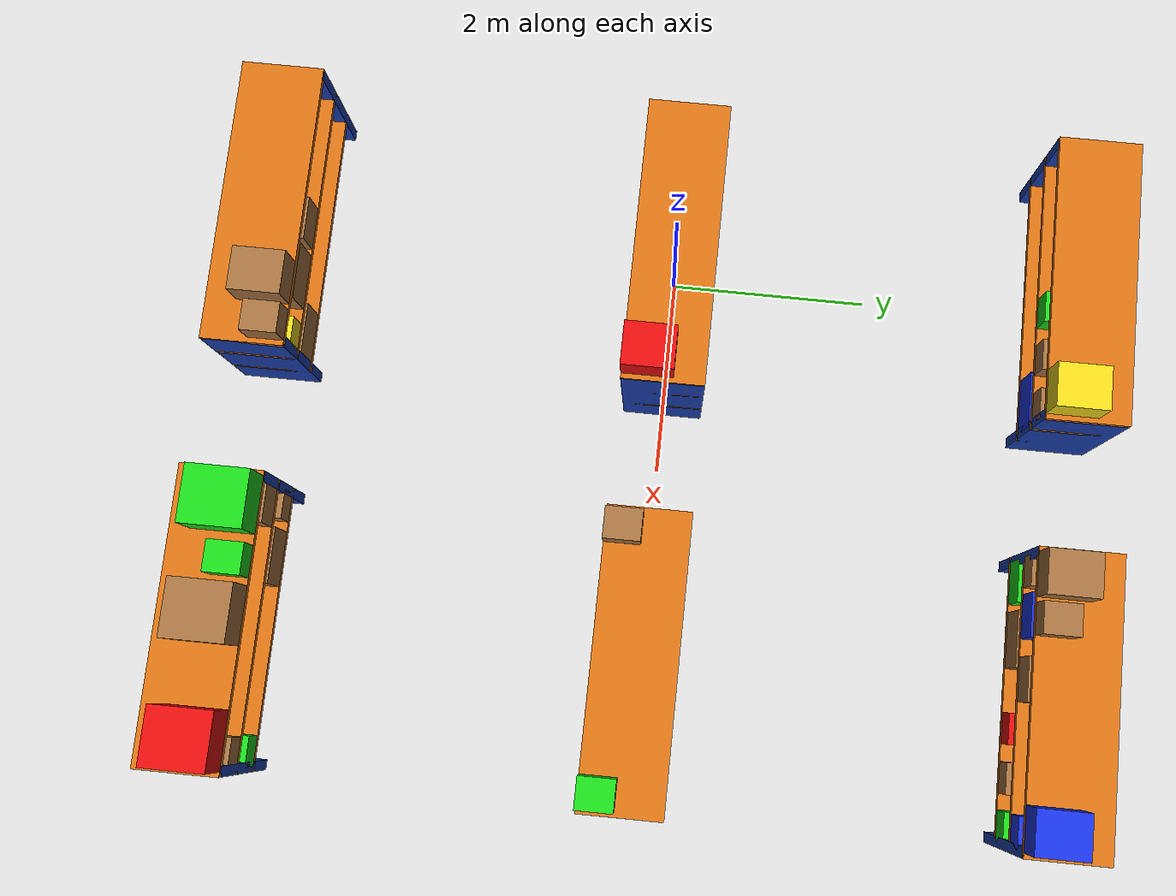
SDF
<sdf version="1.8">
 <world name="default">
  <model name="raf_A2">
   <static>true</static>
   <pose>0 4 0 0 0 0</pose>
   <link name="link">
    <collision name="c">
     <pose>0 0 0.75 0 0 0</pose>
     <geometry><box><size>2.8 0.8 1.5</size></box></geometry>
    </collision>
    <visual name="lidar_dolgu">
     <pose>0 0 0.75 0 0 0</pose>
     <geometry><box><size>2.8 0.8 1.5</size></box></geometry>
     <transparency>1</transparency>
     <cast_shadows>false</cast_shadows>
    </visual>
    <visual name="dikey_sol">
     <pose>-1.35 0 0.75 0 0 0</pose>
     <geometry><box><size>0.1 0.8 1.5</size></box></geometry>
     <material><ambient>0.05 0.15 0.5 1</ambient><diffuse>0.1 0.25 0.7 1</diffuse></material>
    </visual>
    <visual name="dikey_sag">
     <pose>1.35 0 0.75 0 0 0</pose>
     <geometry><box><size>0.1 0.8 1.5</size></box></geometry>
     <material><ambient>0.05 0.15 0.5 1</ambient><diffuse>0.1 0.25 0.7 1</diffuse></material>
    </visual>
    <visual name="kat_1">
     <pose>0 0 0.45 0 0 0</pose>
     <geometry><box><size>2.8 0.8 0.06</size></box></geometry>
     <material><ambient>0.6 0.3 0.05 1</ambient><diffuse>0.85 0.45 0.08 1</diffuse></material>
    </visual>
    <visual name="kat_2">
     <pose>0 0 1.0 0 0 0</pose>
     <geometry><box><size>2.8 0.8 0.06</size></box></geometry>
     <material><ambient>0.6 0.3 0.05 1</ambient><diffuse>0.85 0.45 0.08 1</diffuse></material>
    </visual>
    <visual name="kat_3">
     <pose>0 0 1.5 0 0 0</pose>
     <geometry><box><size>2.8 0.8 0.06</size></box></geometry>
     <material><ambient>0.6 0.3 0.05 1</ambient><diffuse>0.85 0.45 0.08 1</diffuse></material>
    </visual>
   </link>
  </model>
  <model name="raf_A3">
   <static>true</static>
   <pose>4 4 0 0 0 0</pose>
   <link name="link">
    <collision name="c">
     <pose>0 0 0.75 0 0 0</pose>
     <geometry><box><size>2.8 0.8 1.5</size></box></geometry>
    </collision>
    <visual name="lidar_dolgu">
     <pose>0 0 0.75 0 0 0</pose>
     <geometry><box><size>2.8 0.8 1.5</size></box></geometry>
     <transparency>1</transparency>
     <cast_shadows>false</cast_shadows>
    </visual>
    <visual name="dikey_sol">
     <pose>-1.35 0 0.75 0 0 0</pose>
     <geometry><box><size>0.1 0.8 1.5</size></box></geometry>
     <material><ambient>0.05 0.15 0.5 1</ambient><diffuse>0.1 0.25 0.7 1</diffuse></material>
    </visual>
    <visual name="dikey_sag">
     <pose>1.35 0 0.75 0 0 0</pose>
     <geometry><box><size>0.1 0.8 1.5</size></box></geometry>
     <material><ambient>0.05 0.15 0.5 1</ambient><diffuse>0.1 0.25 0.7 1</diffuse></material>
    </visual>
    <visual name="kat_1">
     <pose>0 0 0.45 0 0 0</pose>
     <geometry><box><size>2.8 0.8 0.06</size></box></geometry>
     <material><ambient>0.6 0.3 0.05 1</ambient><diffuse>0.85 0.45 0.08 1</diffuse></material>
    </visual>
    <visual name="kat_2">
     <pose>0 0 1.0 0 0 0</pose>
     <geometry><box><size>2.8 0.8 0.06</size></box></geometry>
     <material><ambient>0.6 0.3 0.05 1</ambient><diffuse>0.85 0.45 0.08 1</diffuse></material>
    </visual>
    <visual name="kat_3">
     <pose>0 0 1.5 0 0 0</pose>
     <geometry><box><size>2.8 0.8 0.06</size></box></geometry>
     <material><ambient>0.6 0.3 0.05 1</ambient><diffuse>0.85 0.45 0.08 1</diffuse></material>
    </visual>
   </link>
  </model>
  <model name="raf_B2">
   <static>true</static>
   <link name="link">
    <collision name="c">
     <pose>0 0 0.75 0 0 0</pose>
     <geometry><box><size>2.8 0.8 1.5</size></box></geometry>
    </collision>
    <visual name="lidar_dolgu">
     <pose>0 0 0.75 0 0 0</pose>
     <geometry><box><size>2.8 0.8 1.5</size></box></geometry>
     <transparency>1</transparency>
     <cast_shadows>false</cast_shadows>
    </visual>
    <visual name="dikey_sol">
     <pose>-1.35 0 0.75 0 0 0</pose>
     <geometry><box><size>0.1 0.8 1.5</size></box></geometry>
     <material><ambient>0.05 0.15 0.5 1</ambient><diffuse>0.1 0.25 0.7 1</diffuse></material>
    </visual>
    <visual name="dikey_sag">
     <pose>1.35 0 0.75 0 0 0</pose>
     <geometry><box><size>0.1 0.8 1.5</size></box></geometry>
     <material><ambient>0.05 0.15 0.5 1</ambient><diffuse>0.1 0.25 0.7 1</diffuse></material>
    </visual>
    <visual name="kat_1">
     <pose>0 0 0.45 0 0 0</pose>
     <geometry><box><size>2.8 0.8 0.06</size></box></geometry>
     <material><ambient>0.6 0.3 0.05 1</ambient><diffuse>0.85 0.45 0.08 1</diffuse></material>
    </visual>
    <visual name="kat_2">
     <pose>0 0 1.0 0 0 0</pose>
     <geometry><box><size>2.8 0.8 0.06</size></box></geometry>
     <material><ambient>0.6 0.3 0.05 1</ambient><diffuse>0.85 0.45 0.08 1</diffuse></material>
    </visual>
    <visual name="kat_3">
     <pose>0 0 1.5 0 0 0</pose>
     <geometry><box><size>2.8 0.8 0.06</size></box></geometry>
     <material><ambient>0.6 0.3 0.05 1</ambient><diffuse>0.85 0.45 0.08 1</diffuse></material>
    </visual>
   </link>
  </model>
  <model name="raf_B3">
   <static>true</static>
   <pose>4 0 0 0 0 0</pose>
   <link name="link">
    <collision name="c">
     <pose>0 0 0.75 0 0 0</pose>
     <geometry><box><size>2.8 0.8 1.5</size></box></geometry>
    </collision>
    <visual name="lidar_dolgu">
     <pose>0 0 0.75 0 0 0</pose>
     <geometry><box><size>2.8 0.8 1.5</size></box></geometry>
     <transparency>1</transparency>
     <cast_shadows>false</cast_shadows>
    </visual>
    <visual name="dikey_sol">
     <pose>-1.35 0 0.75 0 0 0</pose>
     <geometry><box><size>0.1 0.8 1.5</size></box></geometry>
     <material><ambient>0.05 0.15 0.5 1</ambient><diffuse>0.1 0.25 0.7 1</diffuse></material>
    </visual>
    <visual name="dikey_sag">
     <pose>1.35 0 0.75 0 0 0</pose>
     <geometry><box><size>0.1 0.8 1.5</size></box></geometry>
     <material><ambient>0.05 0.15 0.5 1</ambient><diffuse>0.1 0.25 0.7 1</diffuse></material>
    </visual>
    <visual name="kat_1">
     <pose>0 0 0.45 0 0 0</pose>
     <geometry><box><size>2.8 0.8 0.06</size></box></geometry>
     <material><ambient>0.6 0.3 0.05 1</ambient><diffuse>0.85 0.45 0.08 1</diffuse></material>
    </visual>
    <visual name="kat_2">
     <pose>0 0 1.0 0 0 0</pose>
     <geometry><box><size>2.8 0.8 0.06</size></box></geometry>
     <material><ambient>0.6 0.3 0.05 1</ambient><diffuse>0.85 0.45 0.08 1</diffuse></material>
    </visual>
    <visual name="kat_3">
     <pose>0 0 1.5 0 0 0</pose>
     <geometry><box><size>2.8 0.8 0.06</size></box></geometry>
     <material><ambient>0.6 0.3 0.05 1</ambient><diffuse>0.85 0.45 0.08 1</diffuse></material>
    </visual>
   </link>
  </model>
  <model name="raf_C2">
   <static>true</static>
   <pose>0 -4 0 0 0 0</pose>
   <link name="link">
    <collision name="c">
     <pose>0 0 0.75 0 0 0</pose>
     <geometry><box><size>2.8 0.8 1.5</size></box></geometry>
    </collision>
    <visual name="lidar_dolgu">
     <pose>0 0 0.75 0 0 0</pose>
     <geometry><box><size>2.8 0.8 1.5</size></box></geometry>
     <transparency>1</transparency>
     <cast_shadows>false</cast_shadows>
    </visual>
    <visual name="dikey_sol">
     <pose>-1.35 0 0.75 0 0 0</pose>
     <geometry><box><size>0.1 0.8 1.5</size></box></geometry>
     <material><ambient>0.05 0.15 0.5 1</ambient><diffuse>0.1 0.25 0.7 1</diffuse></material>
    </visual>
    <visual name="dikey_sag">
     <pose>1.35 0 0.75 0 0 0</pose>
     <geometry><box><size>0.1 0.8 1.5</size></box></geometry>
     <material><ambient>0.05 0.15 0.5 1</ambient><diffuse>0.1 0.25 0.7 1</diffuse></material>
    </visual>
    <visual name="kat_1">
     <pose>0 0 0.45 0 0 0</pose>
     <geometry><box><size>2.8 0.8 0.06</size></box></geometry>
     <material><ambient>0.6 0.3 0.05 1</ambient><diffuse>0.85 0.45 0.08 1</diffuse></material>
    </visual>
    <visual name="kat_2">
     <pose>0 0 1.0 0 0 0</pose>
     <geometry><box><size>2.8 0.8 0.06</size></box></geometry>
     <material><ambient>0.6 0.3 0.05 1</ambient><diffuse>0.85 0.45 0.08 1</diffuse></material>
    </visual>
    <visual name="kat_3">
     <pose>0 0 1.5 0 0 0</pose>
     <geometry><box><size>2.8 0.8 0.06</size></box></geometry>
     <material><ambient>0.6 0.3 0.05 1</ambient><diffuse>0.85 0.45 0.08 1</diffuse></material>
    </visual>
   </link>
  </model>
  <model name="raf_C3">
   <static>true</static>
   <pose>4 -4 0 0 0 0</pose>
   <link name="link">
    <collision name="c">
     <pose>0 0 0.75 0 0 0</pose>
     <geometry><box><size>2.8 0.8 1.5</size></box></geometry>
    </collision>
    <visual name="lidar_dolgu">
     <pose>0 0 0.75 0 0 0</pose>
     <geometry><box><size>2.8 0.8 1.5</size></box></geometry>
     <transparency>1</transparency>
     <cast_shadows>false</cast_shadows>
    </visual>
    <visual name="dikey_sol">
     <pose>-1.35 0 0.75 0 0 0</pose>
     <geometry><box><size>0.1 0.8 1.5</size></box></geometry>
     <material><ambient>0.05 0.15 0.5 1</ambient><diffuse>0.1 0.25 0.7 1</diffuse></material>
    </visual>
    <visual name="dikey_sag">
     <pose>1.35 0 0.75 0 0 0</pose>
     <geometry><box><size>0.1 0.8 1.5</size></box></geometry>
     <material><ambient>0.05 0.15 0.5 1</ambient><diffuse>0.1 0.25 0.7 1</diffuse></material>
    </visual>
    <visual name="kat_1">
     <pose>0 0 0.45 0 0 0</pose>
     <geometry><box><size>2.8 0.8 0.06</size></box></geometry>
     <material><ambient>0.6 0.3 0.05 1</ambient><diffuse>0.85 0.45 0.08 1</diffuse></material>
    </visual>
    <visual name="kat_2">
     <pose>0 0 1.0 0 0 0</pose>
     <geometry><box><size>2.8 0.8 0.06</size></box></geometry>
     <material><ambient>0.6 0.3 0.05 1</ambient><diffuse>0.85 0.45 0.08 1</diffuse></material>
    </visual>
    <visual name="kat_3">
     <pose>0 0 1.5 0 0 0</pose>
     <geometry><box><size>2.8 0.8 0.06</size></box></geometry>
     <material><ambient>0.6 0.3 0.05 1</ambient><diffuse>0.85 0.45 0.08 1</diffuse></material>
    </visual>
   </link>
  </model>
  <model name="kutu_A2_k1_p4">
   <static>true</static>
   <pose>1.075 3.900 0.690 0 0 0</pose>
   <link name="link">
    <collision name="c"><geometry><box><size>0.55 0.60 0.42</size></box></geometry></collision>
    <visual name="v">
     <geometry><box><size>0.55 0.60 0.42</size></box></geometry>
     <material>
      <ambient>0.05 0.1 0.6 1</ambient>
      <diffuse>0.1 0.2 0.9 1</diffuse>
      <specular>0.1 0.1 0.1 1</specular>
     </material>
    </visual>
   </link>
  </model>
  <model name="kutu_A2_k2_p2">
   <static>true</static>
   <pose>0.243 3.775 1.170 0 0 0</pose>
   <link name="link">
    <collision name="c"><geometry><box><size>0.30 0.35 0.28</size></box></geometry></collision>
    <visual name="v">
     <geometry><box><size>0.30 0.35 0.28</size></box></geometry>
     <material>
      <ambient>0.05 0.5 0.05 1</ambient>
      <diffuse>0.1 0.85 0.1 1</diffuse>
      <specular>0.1 0.1 0.1 1</specular>
     </material>
    </visual>
   </link>
  </model>
  <model name="kutu_A2_k2_p3">
   <static>true</static>
   <pose>0.720 3.775 1.170 0 0 0</pose>
   <link name="link">
    <collision name="c"><geometry><box><size>0.30 0.35 0.28</size></box></geometry></collision>
    <visual name="v">
     <geometry><box><size>0.30 0.35 0.28</size></box></geometry>
     <material>
      <ambient>0.4 0.28 0.15 1</ambient>
      <diffuse>0.65 0.45 0.25 1</diffuse>
      <specular>0.1 0.1 0.1 1</specular>
     </material>
    </visual>
   </link>
  </model>
  <model name="kutu_A2_k2_p4">
   <static>true</static>
   <pose>1.200 3.775 1.170 0 0 0</pose>
   <link name="link">
    <collision name="c"><geometry><box><size>0.30 0.35 0.28</size></box></geometry></collision>
    <visual name="v">
     <geometry><box><size>0.30 0.35 0.28</size></box></geometry>
     <material>
      <ambient>0.4 0.28 0.15 1</ambient>
      <diffuse>0.65 0.45 0.25 1</diffuse>
      <specular>0.1 0.1 0.1 1</specular>
     </material>
    </visual>
   </link>
  </model>
  <model name="kutu_A2_k3_p2">
   <static>true</static>
   <pose>1.140 3.850 1.705 0 0 0</pose>
   <link name="link">
    <collision name="c"><geometry><box><size>0.42 0.50 0.35</size></box></geometry></collision>
    <visual name="v">
     <geometry><box><size>0.42 0.50 0.35</size></box></geometry>
     <material>
      <ambient>0.7 0.6 0.05 1</ambient>
      <diffuse>0.95 0.85 0.1 1</diffuse>
      <specular>0.1 0.1 0.1 1</specular>
     </material>
    </visual>
   </link>
  </model>
  <model name="kutu_A3_k1_p1">
   <static>true</static>
   <pose>2.860 3.850 0.655 0 0 0</pose>
   <link name="link">
    <collision name="c"><geometry><box><size>0.42 0.50 0.35</size></box></geometry></collision>
    <visual name="v">
     <geometry><box><size>0.42 0.50 0.35</size></box></geometry>
     <material>
      <ambient>0.05 0.5 0.05 1</ambient>
      <diffuse>0.1 0.85 0.1 1</diffuse>
      <specular>0.1 0.1 0.1 1</specular>
     </material>
    </visual>
   </link>
  </model>
  <model name="kutu_A3_k1_p2">
   <static>true</static>
   <pose>3.424 3.900 0.690 0 0 0</pose>
   <link name="link">
    <collision name="c"><geometry><box><size>0.55 0.60 0.42</size></box></geometry></collision>
    <visual name="v">
     <geometry><box><size>0.55 0.60 0.42</size></box></geometry>
     <material>
      <ambient>0.4 0.28 0.15 1</ambient>
      <diffuse>0.65 0.45 0.25 1</diffuse>
      <specular>0.1 0.1 0.1 1</specular>
     </material>
    </visual>
   </link>
  </model>
  <model name="kutu_A3_k1_p3">
   <static>true</static>
   <pose>4.275 3.775 0.620 0 0 0</pose>
   <link name="link">
    <collision name="c"><geometry><box><size>0.30 0.35 0.28</size></box></geometry></collision>
    <visual name="v">
     <geometry><box><size>0.30 0.35 0.28</size></box></geometry>
     <material>
      <ambient>0.6 0.02 0.02 1</ambient>
      <diffuse>0.9 0.05 0.05 1</diffuse>
      <specular>0.1 0.1 0.1 1</specular>
     </material>
    </visual>
   </link>
  </model>
  <model name="kutu_A3_k1_p4">
   <static>true</static>
   <pose>4.742 3.775 0.620 0 0 0</pose>
   <link name="link">
    <collision name="c"><geometry><box><size>0.30 0.35 0.28</size></box></geometry></collision>
    <visual name="v">
     <geometry><box><size>0.30 0.35 0.28</size></box></geometry>
     <material>
      <ambient>0.4 0.28 0.15 1</ambient>
      <diffuse>0.65 0.45 0.25 1</diffuse>
      <specular>0.1 0.1 0.1 1</specular>
     </material>
    </visual>
   </link>
  </model>
  <model name="kutu_A3_k1_p5">
   <static>true</static>
   <pose>5.200 3.775 0.620 0 0 0</pose>
   <link name="link">
    <collision name="c"><geometry><box><size>0.30 0.35 0.28</size></box></geometry></collision>
    <visual name="v">
     <geometry><box><size>0.30 0.35 0.28</size></box></geometry>
     <material>
      <ambient>0.05 0.5 0.05 1</ambient>
      <diffuse>0.1 0.85 0.1 1</diffuse>
      <specular>0.1 0.1 0.1 1</specular>
     </material>
    </visual>
   </link>
  </model>
  <model name="kutu_A3_k2_p1">
   <static>true</static>
   <pose>2.800 3.775 1.170 0 0 0</pose>
   <link name="link">
    <collision name="c"><geometry><box><size>0.30 0.35 0.28</size></box></geometry></collision>
    <visual name="v">
     <geometry><box><size>0.30 0.35 0.28</size></box></geometry>
     <material>
      <ambient>0.4 0.28 0.15 1</ambient>
      <diffuse>0.65 0.45 0.25 1</diffuse>
      <specular>0.1 0.1 0.1 1</specular>
     </material>
    </visual>
   </link>
  </model>
  <model name="kutu_A3_k2_p2">
   <static>true</static>
   <pose>3.223 3.850 1.205 0 0 0</pose>
   <link name="link">
    <collision name="c"><geometry><box><size>0.42 0.50 0.35</size></box></geometry></collision>
    <visual name="v">
     <geometry><box><size>0.42 0.50 0.35</size></box></geometry>
     <material>
      <ambient>0.05 0.1 0.6 1</ambient>
      <diffuse>0.1 0.2 0.9 1</diffuse>
      <specular>0.1 0.1 0.1 1</specular>
     </material>
    </visual>
   </link>
  </model>
  <model name="kutu_A3_k2_p3">
   <static>true</static>
   <pose>3.812 3.850 1.205 0 0 0</pose>
   <link name="link">
    <collision name="c"><geometry><box><size>0.42 0.50 0.35</size></box></geometry></collision>
    <visual name="v">
     <geometry><box><size>0.42 0.50 0.35</size></box></geometry>
     <material>
      <ambient>0.4 0.28 0.15 1</ambient>
      <diffuse>0.65 0.45 0.25 1</diffuse>
      <specular>0.1 0.1 0.1 1</specular>
     </material>
    </visual>
   </link>
  </model>
  <model name="kutu_A3_k2_p4">
   <static>true</static>
   <pose>5.200 3.775 1.170 0 0 0</pose>
   <link name="link">
    <collision name="c"><geometry><box><size>0.30 0.35 0.28</size></box></geometry></collision>
    <visual name="v">
     <geometry><box><size>0.30 0.35 0.28</size></box></geometry>
     <material>
      <ambient>0.05 0.1 0.6 1</ambient>
      <diffuse>0.1 0.2 0.9 1</diffuse>
      <specular>0.1 0.1 0.1 1</specular>
     </material>
    </visual>
   </link>
  </model>
  <model name="kutu_A3_k3_p1">
   <static>true</static>
   <pose>2.860 3.850 1.705 0 0 0</pose>
   <link name="link">
    <collision name="c"><geometry><box><size>0.42 0.50 0.35</size></box></geometry></collision>
    <visual name="v">
     <geometry><box><size>0.42 0.50 0.35</size></box></geometry>
     <material>
      <ambient>0.4 0.28 0.15 1</ambient>
      <diffuse>0.65 0.45 0.25 1</diffuse>
      <specular>0.1 0.1 0.1 1</specular>
     </material>
    </visual>
   </link>
  </model>
  <model name="kutu_A3_k3_p2">
   <static>true</static>
   <pose>3.271 3.775 1.670 0 0 0</pose>
   <link name="link">
    <collision name="c"><geometry><box><size>0.30 0.35 0.28</size></box></geometry></collision>
    <visual name="v">
     <geometry><box><size>0.30 0.35 0.28</size></box></geometry>
     <material>
      <ambient>0.4 0.28 0.15 1</ambient>
      <diffuse>0.65 0.45 0.25 1</diffuse>
      <specular>0.1 0.1 0.1 1</specular>
     </material>
    </visual>
   </link>
  </model>
  <model name="kutu_A3_k3_p3">
   <static>true</static>
   <pose>5.140 3.850 1.705 0 0 0</pose>
   <link name="link">
    <collision name="c"><geometry><box><size>0.42 0.50 0.35</size></box></geometry></collision>
    <visual name="v">
     <geometry><box><size>0.42 0.50 0.35</size></box></geometry>
     <material>
      <ambient>0.05 0.1 0.6 1</ambient>
      <diffuse>0.1 0.2 0.9 1</diffuse>
      <specular>0.1 0.1 0.1 1</specular>
     </material>
    </visual>
   </link>
  </model>
  <model name="kutu_B2_k1_p2">
   <static>true</static>
   <pose>1.075 -0.100 0.690 0 0 0</pose>
   <link name="link">
    <collision name="c"><geometry><box><size>0.55 0.60 0.42</size></box></geometry></collision>
    <visual name="v">
     <geometry><box><size>0.55 0.60 0.42</size></box></geometry>
     <material>
      <ambient>0.05 0.5 0.05 1</ambient>
      <diffuse>0.1 0.85 0.1 1</diffuse>
      <specular>0.1 0.1 0.1 1</specular>
     </material>
    </visual>
   </link>
  </model>
  <model name="kutu_B2_k2_p3">
   <static>true</static>
   <pose>0.001 -0.100 1.240 0 0 0</pose>
   <link name="link">
    <collision name="c"><geometry><box><size>0.55 0.60 0.42</size></box></geometry></collision>
    <visual name="v">
     <geometry><box><size>0.55 0.60 0.42</size></box></geometry>
     <material>
      <ambient>0.6 0.02 0.02 1</ambient>
      <diffuse>0.9 0.05 0.05 1</diffuse>
      <specular>0.1 0.1 0.1 1</specular>
     </material>
    </visual>
   </link>
  </model>
  <model name="kutu_B2_k2_p4">
   <static>true</static>
   <pose>1.200 -0.225 1.170 0 0 0</pose>
   <link name="link">
    <collision name="c"><geometry><box><size>0.30 0.35 0.28</size></box></geometry></collision>
    <visual name="v">
     <geometry><box><size>0.30 0.35 0.28</size></box></geometry>
     <material>
      <ambient>0.05 0.1 0.6 1</ambient>
      <diffuse>0.1 0.2 0.9 1</diffuse>
      <specular>0.1 0.1 0.1 1</specular>
     </material>
    </visual>
   </link>
  </model>
  <model name="kutu_B2_k3_p2">
   <static>true</static>
   <pose>1.140 -0.150 1.705 0 0 0</pose>
   <link name="link">
    <collision name="c"><geometry><box><size>0.42 0.50 0.35</size></box></geometry></collision>
    <visual name="v">
     <geometry><box><size>0.42 0.50 0.35</size></box></geometry>
     <material>
      <ambient>0.6 0.02 0.02 1</ambient>
      <diffuse>0.9 0.05 0.05 1</diffuse>
      <specular>0.1 0.1 0.1 1</specular>
     </material>
    </visual>
   </link>
  </model>
  <model name="kutu_B3_k1_p1">
   <static>true</static>
   <pose>2.925 -0.100 0.690 0 0 0</pose>
   <link name="link">
    <collision name="c"><geometry><box><size>0.55 0.60 0.42</size></box></geometry></collision>
    <visual name="v">
     <geometry><box><size>0.55 0.60 0.42</size></box></geometry>
     <material>
      <ambient>0.4 0.28 0.15 1</ambient>
      <diffuse>0.65 0.45 0.25 1</diffuse>
      <specular>0.1 0.1 0.1 1</specular>
     </material>
    </visual>
   </link>
  </model>
  <model name="kutu_B3_k1_p2">
   <static>true</static>
   <pose>3.410 -0.225 0.620 0 0 0</pose>
   <link name="link">
    <collision name="c"><geometry><box><size>0.30 0.35 0.28</size></box></geometry></collision>
    <visual name="v">
     <geometry><box><size>0.30 0.35 0.28</size></box></geometry>
     <material>
      <ambient>0.4 0.28 0.15 1</ambient>
      <diffuse>0.65 0.45 0.25 1</diffuse>
      <specular>0.1 0.1 0.1 1</specular>
     </material>
    </visual>
   </link>
  </model>
  <model name="kutu_B3_k1_p3">
   <static>true</static>
   <pose>4.290 -0.100 0.690 0 0 0</pose>
   <link name="link">
    <collision name="c"><geometry><box><size>0.55 0.60 0.42</size></box></geometry></collision>
    <visual name="v">
     <geometry><box><size>0.55 0.60 0.42</size></box></geometry>
     <material>
      <ambient>0.4 0.28 0.15 1</ambient>
      <diffuse>0.65 0.45 0.25 1</diffuse>
      <specular>0.1 0.1 0.1 1</specular>
     </material>
    </visual>
   </link>
  </model>
  <model name="kutu_B3_k1_p4">
   <static>true</static>
   <pose>5.075 -0.100 0.690 0 0 0</pose>
   <link name="link">
    <collision name="c"><geometry><box><size>0.55 0.60 0.42</size></box></geometry></collision>
    <visual name="v">
     <geometry><box><size>0.55 0.60 0.42</size></box></geometry>
     <material>
      <ambient>0.6 0.02 0.02 1</ambient>
      <diffuse>0.9 0.05 0.05 1</diffuse>
      <specular>0.1 0.1 0.1 1</specular>
     </material>
    </visual>
   </link>
  </model>
  <model name="kutu_B3_k2_p1">
   <static>true</static>
   <pose>2.860 -0.150 1.205 0 0 0</pose>
   <link name="link">
    <collision name="c"><geometry><box><size>0.42 0.50 0.35</size></box></geometry></collision>
    <visual name="v">
     <geometry><box><size>0.42 0.50 0.35</size></box></geometry>
     <material>
      <ambient>0.6 0.02 0.02 1</ambient>
      <diffuse>0.9 0.05 0.05 1</diffuse>
      <specular>0.1 0.1 0.1 1</specular>
     </material>
    </visual>
   </link>
  </model>
  <model name="kutu_B3_k2_p2">
   <static>true</static>
   <pose>3.327 -0.225 1.170 0 0 0</pose>
   <link name="link">
    <collision name="c"><geometry><box><size>0.30 0.35 0.28</size></box></geometry></collision>
    <visual name="v">
     <geometry><box><size>0.30 0.35 0.28</size></box></geometry>
     <material>
      <ambient>0.4 0.28 0.15 1</ambient>
      <diffuse>0.65 0.45 0.25 1</diffuse>
      <specular>0.1 0.1 0.1 1</specular>
     </material>
    </visual>
   </link>
  </model>
  <model name="kutu_B3_k2_p3">
   <static>true</static>
   <pose>4.658 -0.150 1.205 0 0 0</pose>
   <link name="link">
    <collision name="c"><geometry><box><size>0.42 0.50 0.35</size></box></geometry></collision>
    <visual name="v">
     <geometry><box><size>0.42 0.50 0.35</size></box></geometry>
     <material>
      <ambient>0.4 0.28 0.15 1</ambient>
      <diffuse>0.65 0.45 0.25 1</diffuse>
      <specular>0.1 0.1 0.1 1</specular>
     </material>
    </visual>
   </link>
  </model>
  <model name="kutu_B3_k2_p4">
   <static>true</static>
   <pose>5.200 -0.225 1.170 0 0 0</pose>
   <link name="link">
    <collision name="c"><geometry><box><size>0.30 0.35 0.28</size></box></geometry></collision>
    <visual name="v">
     <geometry><box><size>0.30 0.35 0.28</size></box></geometry>
     <material>
      <ambient>0.4 0.28 0.15 1</ambient>
      <diffuse>0.65 0.45 0.25 1</diffuse>
      <specular>0.1 0.1 0.1 1</specular>
     </material>
    </visual>
   </link>
  </model>
  <model name="kutu_B3_k3_p1">
   <static>true</static>
   <pose>2.800 -0.225 1.670 0 0 0</pose>
   <link name="link">
    <collision name="c"><geometry><box><size>0.30 0.35 0.28</size></box></geometry></collision>
    <visual name="v">
     <geometry><box><size>0.30 0.35 0.28</size></box></geometry>
     <material>
      <ambient>0.4 0.28 0.15 1</ambient>
      <diffuse>0.65 0.45 0.25 1</diffuse>
      <specular>0.1 0.1 0.1 1</specular>
     </material>
    </visual>
   </link>
  </model>
  <model name="kutu_B3_k3_p2">
   <static>true</static>
   <pose>5.200 -0.225 1.670 0 0 0</pose>
   <link name="link">
    <collision name="c"><geometry><box><size>0.30 0.35 0.28</size></box></geometry></collision>
    <visual name="v">
     <geometry><box><size>0.30 0.35 0.28</size></box></geometry>
     <material>
      <ambient>0.05 0.5 0.05 1</ambient>
      <diffuse>0.1 0.85 0.1 1</diffuse>
      <specular>0.1 0.1 0.1 1</specular>
     </material>
    </visual>
   </link>
  </model>
  <model name="kutu_C2_k1_p4">
   <static>true</static>
   <pose>1.075 -3.900 0.690 0 0 0</pose>
   <link name="link">
    <collision name="c"><geometry><box><size>0.55 0.60 0.42</size></box></geometry></collision>
    <visual name="v">
     <geometry><box><size>0.55 0.60 0.42</size></box></geometry>
     <material>
      <ambient>0.4 0.28 0.15 1</ambient>
      <diffuse>0.65 0.45 0.25 1</diffuse>
      <specular>0.1 0.1 0.1 1</specular>
     </material>
    </visual>
   </link>
  </model>
  <model name="kutu_C2_k2_p2">
   <static>true</static>
   <pose>0.074 -3.850 1.205 0 0 0</pose>
   <link name="link">
    <collision name="c"><geometry><box><size>0.42 0.50 0.35</size></box></geometry></collision>
    <visual name="v">
     <geometry><box><size>0.42 0.50 0.35</size></box></geometry>
     <material>
      <ambient>0.4 0.28 0.15 1</ambient>
      <diffuse>0.65 0.45 0.25 1</diffuse>
      <specular>0.1 0.1 0.1 1</specular>
     </material>
    </visual>
   </link>
  </model>
  <model name="kutu_C2_k2_p3">
   <static>true</static>
   <pose>0.627 -3.900 1.240 0 0 0</pose>
   <link name="link">
    <collision name="c"><geometry><box><size>0.55 0.60 0.42</size></box></geometry></collision>
    <visual name="v">
     <geometry><box><size>0.55 0.60 0.42</size></box></geometry>
     <material>
      <ambient>0.4 0.28 0.15 1</ambient>
      <diffuse>0.65 0.45 0.25 1</diffuse>
      <specular>0.1 0.1 0.1 1</specular>
     </material>
    </visual>
   </link>
  </model>
  <model name="kutu_C2_k2_p4">
   <static>true</static>
   <pose>1.200 -3.775 1.170 0 0 0</pose>
   <link name="link">
    <collision name="c"><geometry><box><size>0.30 0.35 0.28</size></box></geometry></collision>
    <visual name="v">
     <geometry><box><size>0.30 0.35 0.28</size></box></geometry>
     <material>
      <ambient>0.7 0.6 0.05 1</ambient>
      <diffuse>0.95 0.85 0.1 1</diffuse>
      <specular>0.1 0.1 0.1 1</specular>
     </material>
    </visual>
   </link>
  </model>
  <model name="kutu_C2_k3_p4">
   <static>true</static>
   <pose>0.783 -3.850 1.705 0 0 0</pose>
   <link name="link">
    <collision name="c"><geometry><box><size>0.42 0.50 0.35</size></box></geometry></collision>
    <visual name="v">
     <geometry><box><size>0.42 0.50 0.35</size></box></geometry>
     <material>
      <ambient>0.4 0.28 0.15 1</ambient>
      <diffuse>0.65 0.45 0.25 1</diffuse>
      <specular>0.1 0.1 0.1 1</specular>
     </material>
    </visual>
   </link>
  </model>
  <model name="kutu_C2_k3_p5">
   <static>true</static>
   <pose>1.200 -3.775 1.670 0 0 0</pose>
   <link name="link">
    <collision name="c"><geometry><box><size>0.30 0.35 0.28</size></box></geometry></collision>
    <visual name="v">
     <geometry><box><size>0.30 0.35 0.28</size></box></geometry>
     <material>
      <ambient>0.4 0.28 0.15 1</ambient>
      <diffuse>0.65 0.45 0.25 1</diffuse>
      <specular>0.1 0.1 0.1 1</specular>
     </material>
    </visual>
   </link>
  </model>
  <model name="kutu_C3_k1_p1">
   <static>true</static>
   <pose>2.800 -3.775 0.620 0 0 0</pose>
   <link name="link">
    <collision name="c"><geometry><box><size>0.30 0.35 0.28</size></box></geometry></collision>
    <visual name="v">
     <geometry><box><size>0.30 0.35 0.28</size></box></geometry>
     <material>
      <ambient>0.4 0.28 0.15 1</ambient>
      <diffuse>0.65 0.45 0.25 1</diffuse>
      <specular>0.1 0.1 0.1 1</specular>
     </material>
    </visual>
   </link>
  </model>
  <model name="kutu_C3_k1_p2">
   <static>true</static>
   <pose>3.325 -3.900 0.690 0 0 0</pose>
   <link name="link">
    <collision name="c"><geometry><box><size>0.55 0.60 0.42</size></box></geometry></collision>
    <visual name="v">
     <geometry><box><size>0.55 0.60 0.42</size></box></geometry>
     <material>
      <ambient>0.4 0.28 0.15 1</ambient>
      <diffuse>0.65 0.45 0.25 1</diffuse>
      <specular>0.1 0.1 0.1 1</specular>
     </material>
    </visual>
   </link>
  </model>
  <model name="kutu_C3_k1_p3">
   <static>true</static>
   <pose>5.200 -3.775 0.620 0 0 0</pose>
   <link name="link">
    <collision name="c"><geometry><box><size>0.30 0.35 0.28</size></box></geometry></collision>
    <visual name="v">
     <geometry><box><size>0.30 0.35 0.28</size></box></geometry>
     <material>
      <ambient>0.05 0.5 0.05 1</ambient>
      <diffuse>0.1 0.85 0.1 1</diffuse>
      <specular>0.1 0.1 0.1 1</specular>
     </material>
    </visual>
   </link>
  </model>
  <model name="kutu_C3_k2_p1">
   <static>true</static>
   <pose>2.860 -3.850 1.205 0 0 0</pose>
   <link name="link">
    <collision name="c"><geometry><box><size>0.42 0.50 0.35</size></box></geometry></collision>
    <visual name="v">
     <geometry><box><size>0.42 0.50 0.35</size></box></geometry>
     <material>
      <ambient>0.4 0.28 0.15 1</ambient>
      <diffuse>0.65 0.45 0.25 1</diffuse>
      <specular>0.1 0.1 0.1 1</specular>
     </material>
    </visual>
   </link>
  </model>
  <model name="kutu_C3_k2_p2">
   <static>true</static>
   <pose>5.200 -3.775 1.170 0 0 0</pose>
   <link name="link">
    <collision name="c"><geometry><box><size>0.30 0.35 0.28</size></box></geometry></collision>
    <visual name="v">
     <geometry><box><size>0.30 0.35 0.28</size></box></geometry>
     <material>
      <ambient>0.4 0.28 0.15 1</ambient>
      <diffuse>0.65 0.45 0.25 1</diffuse>
      <specular>0.1 0.1 0.1 1</specular>
     </material>
    </visual>
   </link>
  </model>
  <model name="kutu_C3_k3_p1">
   <static>true</static>
   <pose>2.925 -3.900 1.740 0 0 0</pose>
   <link name="link">
    <collision name="c"><geometry><box><size>0.55 0.60 0.42</size></box></geometry></collision>
    <visual name="v">
     <geometry><box><size>0.55 0.60 0.42</size></box></geometry>
     <material>
      <ambient>0.05 0.5 0.05 1</ambient>
      <diffuse>0.1 0.85 0.1 1</diffuse>
      <specular>0.1 0.1 0.1 1</specular>
     </material>
    </visual>
   </link>
  </model>
  <model name="kutu_C3_k3_p2">
   <static>true</static>
   <pose>3.453 -3.775 1.670 0 0 0</pose>
   <link name="link">
    <collision name="c"><geometry><box><size>0.30 0.35 0.28</size></box></geometry></collision>
    <visual name="v">
     <geometry><box><size>0.30 0.35 0.28</size></box></geometry>
     <material>
      <ambient>0.05 0.5 0.05 1</ambient>
      <diffuse>0.1 0.85 0.1 1</diffuse>
      <specular>0.1 0.1 0.1 1</specular>
     </material>
    </visual>
   </link>
  </model>
  <model name="kutu_C3_k3_p3">
   <static>true</static>
   <pose>3.950 -3.900 1.740 0 0 0</pose>
   <link name="link">
    <collision name="c"><geometry><box><size>0.55 0.60 0.42</size></box></geometry></collision>
    <visual name="v">
     <geometry><box><size>0.55 0.60 0.42</size></box></geometry>
     <material>
      <ambient>0.4 0.28 0.15 1</ambient>
      <diffuse>0.65 0.45 0.25 1</diffuse>
      <specular>0.1 0.1 0.1 1</specular>
     </material>
    </visual>
   </link>
  </model>
  <model name="kutu_C3_k3_p4">
   <static>true</static>
   <pose>5.075 -3.900 1.740 0 0 0</pose>
   <link name="link">
    <collision name="c"><geometry><box><size>0.55 0.60 0.42</size></box></geometry></collision>
    <visual name="v">
     <geometry><box><size>0.55 0.60 0.42</size></box></geometry>
     <material>
      <ambient>0.6 0.02 0.02 1</ambient>
      <diffuse>0.9 0.05 0.05 1</diffuse>
      <specular>0.1 0.1 0.1 1</specular>
     </material>
    </visual>
   </link>
  </model>
 </world>
</sdf>
